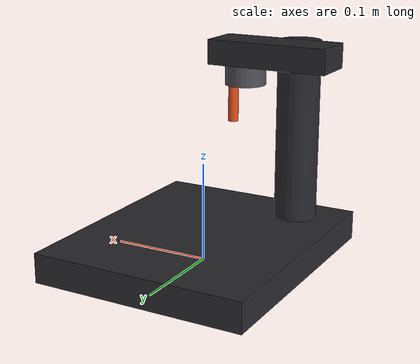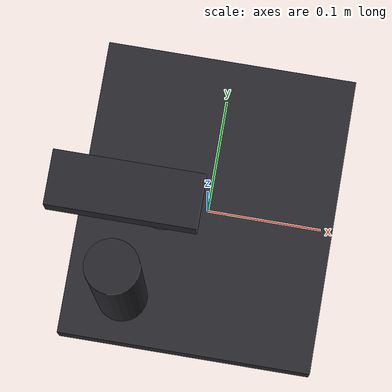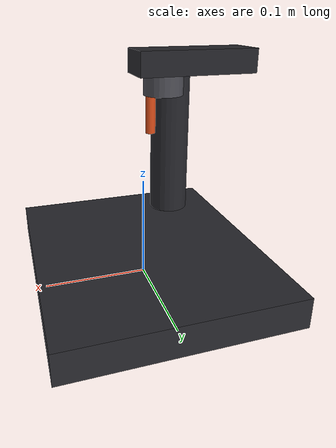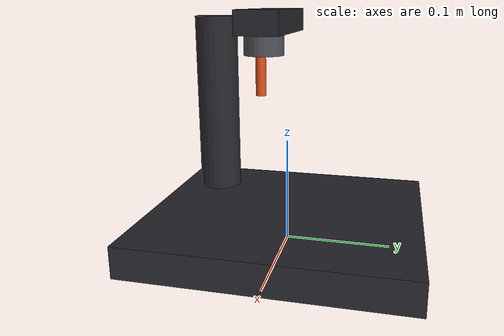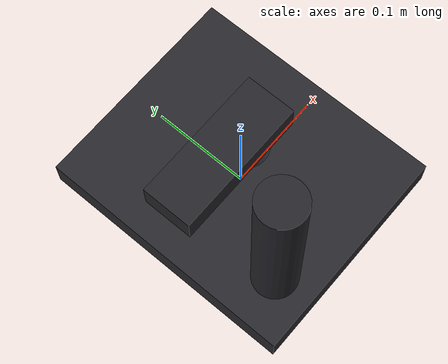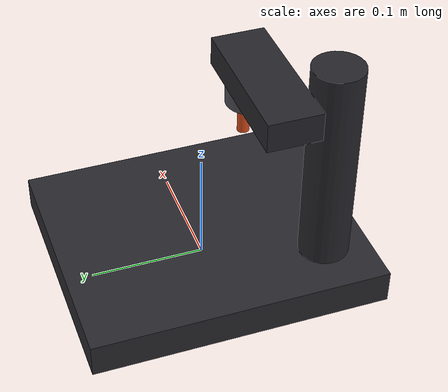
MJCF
<?xml version="1.0" encoding="utf-8"?>
<mujoco model="real_lab_basel_university_lmd">
  <compiler angle="radian" autolimits="true"/>
  <default>
    <default class="body"><geom contype="1" conaffinity="1"/></default>
  </default>
  <worldbody>
    <body name="base">
      <geom type="box" size="0.11 0.13 0.015" pos="0 0 0.015" rgba="0.16 0.16 0.18 1" class="body"/>
      <geom type="cylinder" size="0.022 0.1" pos="-0.06 -0.09 0.115" rgba="0.15 0.15 0.17 1" class="body"/>
      <geom type="box" size="0.06 0.022 0.012" pos="-0.06 -0.03 0.21" rgba="0.15 0.15 0.17 1" class="body"/>
      <body name="filter_turret" pos="-0.03 -0.03 0.19">
        <joint name="filter_turret_joint" type="hinge" axis="0 0 1" range="0 3.14" damping="0.5" frictionloss="0.2"/>
  <geom type="cylinder" size="0.02 0.012" pos="0 0 0" rgba="0.3 0.3 0.33 1" class="body"/>
  <geom type="cylinder" size="0.005 0.025" pos="0.013 0 -0.025" rgba="0.85 0.3 0.1 1" class="body"/>
      </body>
    </body>
  </worldbody>
</mujoco>
